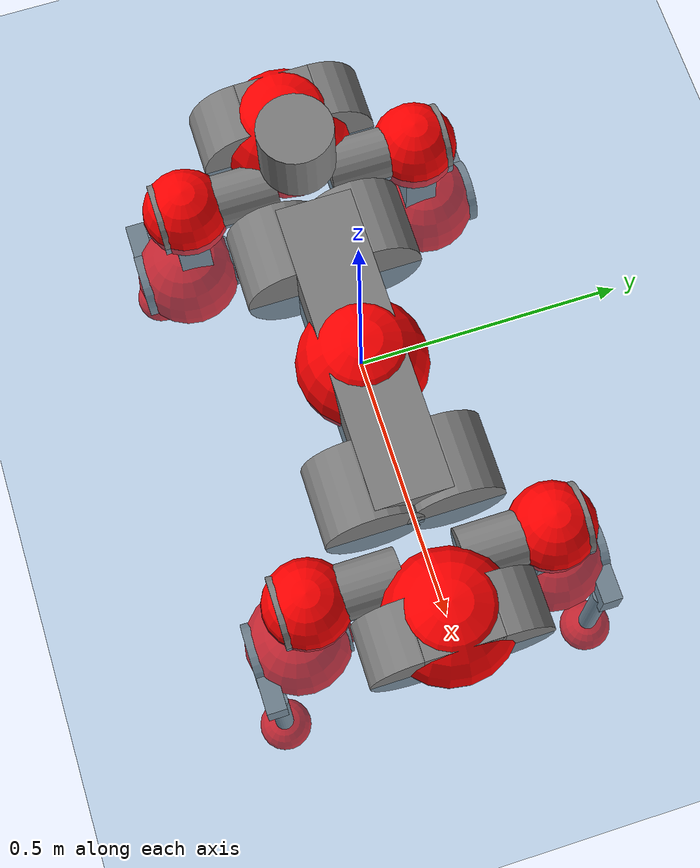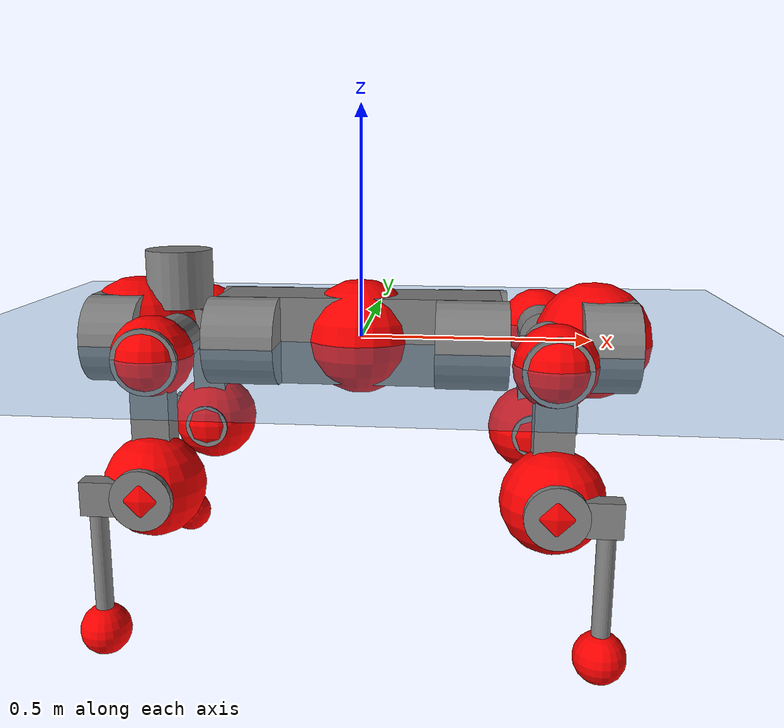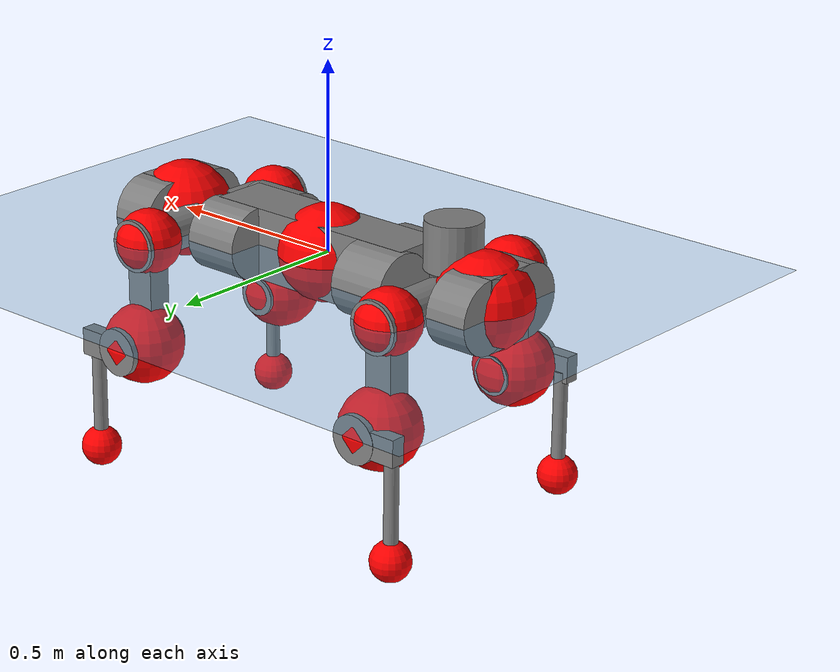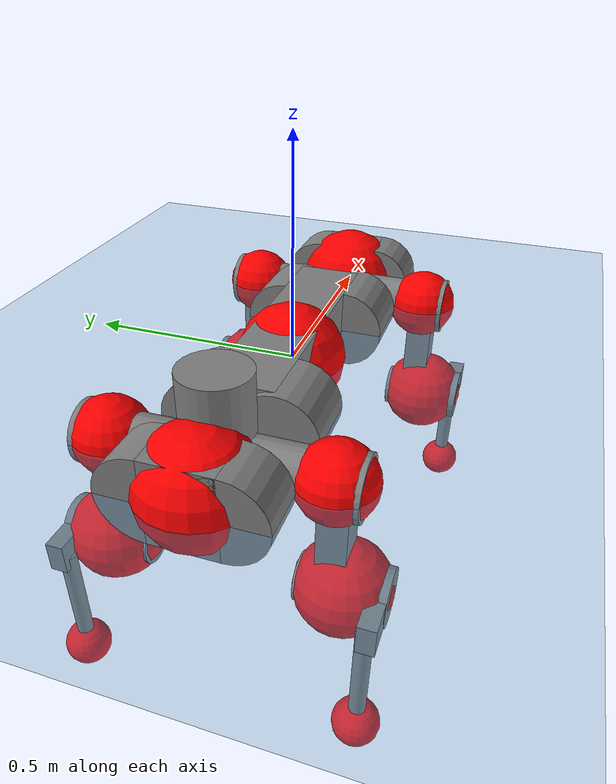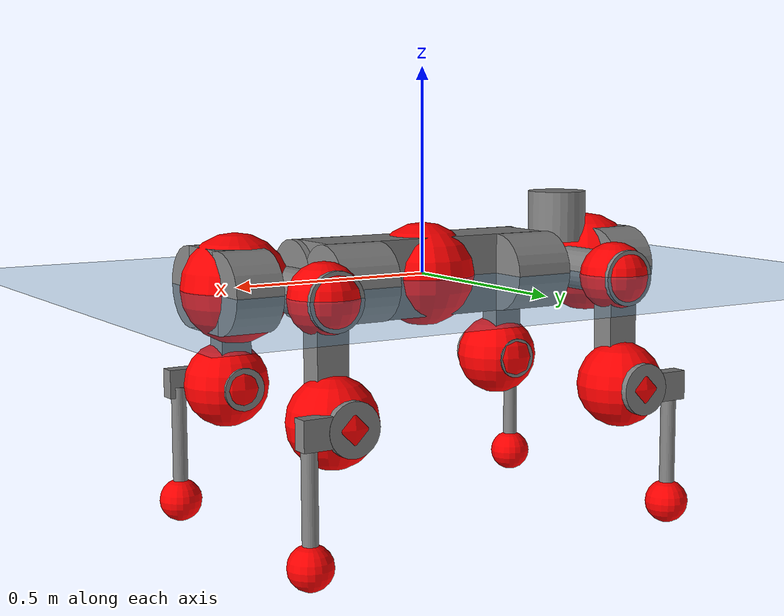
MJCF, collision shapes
<mujoco model="anymal_c">
  <compiler angle="radian" assetdir="assets" balanceinertia="true" inertiafromgeom="false"/>

  <option timestep="0.005" density="1.2" viscosity="2e-05"/>

  <size nkey="1"/>

  <visual>
    <quality shadowsize="8192"/>
    <map shadowclip="0.5"/>
  </visual>

  <default>
    <default class="/">
      <material specular="0" shininess="0.25"/>
      <geom contype="0" conaffinity="0" group="1" solref="-1000 -80"/>
      <site size="0.01 0.005 0.005" group="5"/>
      <general forcelimited="true" forcerange="-80 80" biastype="affine" gainprm="80" biasprm="0 -80 -2"/>
      <default class="anymal_c">
        <joint armature="0.01" damping="0.01" frictionloss="0.1"/>
        <default class="visual">
          <geom type="mesh" group="2"/>
          <default class="visual_zflip"/>
        </default>
        <default class="collision">
          <geom type="cylinder" group="3"/>
          <default class="foot">
            <geom size="0.03 0 0" type="sphere" condim="6" priority="1" friction="0.8 0.02 0.01" solimp="0.015 1 0.03"/>
          </default>
        </default>
      </default>
      <default class="reward_collision_sphere">
        <geom group="5" rgba="1 0 0 1"/>
      </default>
    </default>
  </default>

  <asset>
    <texture type="skybox" colorspace="auto" name="//unnamed_texture_0" builtin="gradient" rgb1="0.95 0.95 0.95" rgb2="0.95 0.95 0.95" width="100" height="600"/>
    <texture type="2d" colorspace="auto" name="texplane" builtin="checker" rgb1="0.345 0.575 0.748" rgb2="0.345 0.575 0.748" markrgb="1 1 1" width="512" height="512"/>
    <texture type="2d" colorspace="linear" name="base" file="base.png"/>
    <texture type="2d" colorspace="linear" name="top_shell" file="top_shell.png"/>
    <texture type="2d" colorspace="linear" name="bottom_shell" file="bottom_shell.png"/>
    <texture type="2d" colorspace="linear" name="remote" file="remote.png"/>
    <texture type="2d" colorspace="linear" name="hatch" file="hatch.png"/>
    <texture type="2d" colorspace="linear" name="handle" file="handle.png"/>
    <texture type="2d" colorspace="linear" name="face" file="face.png"/>
    <texture type="2d" colorspace="linear" name="battery" file="battery.png"/>
    <texture type="2d" colorspace="linear" name="lidar_cage" file="lidar_cage.png"/>
    <texture type="2d" colorspace="linear" name="depth_camera" file="depth_camera.png"/>
    <texture type="2d" colorspace="linear" name="wide_angle_camera" file="wide_angle_camera.png"/>
    <texture type="2d" colorspace="linear" name="lidar" file="lidar.png"/>
    <texture type="2d" colorspace="linear" name="drive" file="drive.png"/>
    <texture type="2d" colorspace="linear" name="hip_l" file="hip_l.png"/>
    <texture type="2d" colorspace="linear" name="shank_l" file="shank_l.png"/>
    <texture type="2d" colorspace="linear" name="foot" file="foot.png"/>
    <texture type="2d" colorspace="linear" name="thigh" file="thigh.png"/>
    <texture type="2d" colorspace="linear" name="shank_r" file="shank_r.png"/>
    <texture type="2d" colorspace="linear" name="hip_r" file="hip_r.png"/>
    <material name="MatPlane" class="/" texture="texplane" texuniform="true" texrepeat="2 2" specular="0.9" shininess="0.5"/>
    <material name="black_plastic" class="/" rgba="0.007 0.007 0.007 1"/>
    <material name="green" class="/" rgba="0.052 0.178 0.033 1"/>
    <material name="red" class="/" rgba="0.178 0.006 0.005 1"/>
    <material name="yellow" class="/" rgba="0.178 0.119 0.006 1"/>
    <material name="lwl" class="/" rgba="0.8 0.8 0.8 1"/>
    <material name="base" class="/" texture="base"/>
    <material name="top_shell" class="/" texture="top_shell"/>
    <material name="bottom_shell" class="/" texture="bottom_shell"/>
    <material name="hip_l" class="/" texture="hip_l"/>
    <material name="thigh" class="/" texture="thigh"/>
    <material name="shank_l" class="/" texture="shank_l"/>
    <material name="foot" class="/" texture="foot"/>
    <material name="hip_r" class="/" texture="hip_r"/>
    <material name="shank" class="/" texture="shank_r"/>
    <material name="hatch" class="/" texture="hatch"/>
    <material name="remote" class="/" texture="remote"/>
    <material name="handle" class="/" texture="handle"/>
    <material name="face" class="/" texture="face"/>
    <material name="depth_camera" class="/" texture="depth_camera"/>
    <material name="wide_angle_camera" class="/" texture="wide_angle_camera"/>
    <material name="battery" class="/" texture="battery"/>
    <material name="lidar_cage" class="/" texture="lidar_cage"/>
    <material name="lidar" class="/" texture="lidar"/>
    <material name="drive" class="/" texture="drive"/>
    <mesh name="base_0" class="/" file="base_0.obj"/>
    <mesh name="base_1" class="/" file="base_1.obj"/>
    <mesh name="base_2" class="/" file="base_2.obj"/>
    <mesh name="base_3" class="/" file="base_3.obj"/>
    <mesh name="base_4" class="/" file="base_4.obj"/>
    <mesh name="base_5" class="/" file="base_5.obj"/>
    <mesh name="top_shell" class="/" file="top_shell.obj"/>
    <mesh name="bottom_shell" class="/" file="bottom_shell.obj"/>
    <mesh name="remote" class="/" file="remote.obj"/>
    <mesh name="handle" class="/" file="handle.obj"/>
    <mesh name="face" class="/" file="face.obj"/>
    <mesh name="wide_angle_camera" class="/" file="wide_angle_camera.obj"/>
    <mesh name="depth_camera" class="/" file="depth_camera.obj"/>
    <mesh name="battery" class="/" file="battery.obj"/>
    <mesh name="lidar_cage" class="/" file="lidar_cage.obj"/>
    <mesh name="lidar" class="/" file="lidar.obj"/>
    <mesh name="drive" class="/" file="drive.obj"/>
    <mesh name="hip_l" class="/" file="hip_l.obj"/>
    <mesh name="thigh" class="/" file="thigh.obj"/>
    <mesh name="shank_l" class="/" file="shank_l.obj"/>
    <mesh name="foot" class="/" file="foot.obj"/>
    <mesh name="hip_r" class="/" file="hip_r.obj"/>
    <mesh name="hatch" class="/" file="hatch.obj"/>
    <mesh name="shank_r" class="/" file="shank_r.obj"/>
  </asset>

  <worldbody>
    <geom name="floor" class="/" size="100 100 0.125" type="plane" group="0" material="MatPlane"/>
    <light name="toplight_shadow" class="/" pos="0 0 5" dir="0.0990148 0.0990148 -0.990148" type="directional" ambient="0.04 0.04 0.04" diffuse="0.55 0.55 0.55" specular="0.12 0.12 0.12"/>
    <light name="toplight_fill" class="/" pos="0 0 5" dir="0.0990148 0.0990148 -0.990148" type="directional" castshadow="false" ambient="0.04 0.04 0.04" diffuse="0.3 0.3 0.3" specular="0.08 0.08 0.08"/>
    <body name="trunk" childclass="anymal_c" pos="-0.000146557 0.00271888 0.000395298" quat="0.999999 0.000632194 -2.94458e-05 0.00078697">
      <inertial pos="0.00251566 -0.000865631 0.0465582" quat="0.497096 0.496624 0.510859 0.49526" mass="22.8493" diaginertia="1.13725 1.04386 0.15244"/>
      <joint name="//unnamed_joint_0" type="free" armature="0" damping="0" frictionloss="0"/>
      <geom name="//unnamed_geom_1" class="visual" material="green" mesh="base_0"/>
      <geom name="//unnamed_geom_2" class="visual" material="yellow" mesh="base_1"/>
      <geom name="//unnamed_geom_3" class="visual" material="red" mesh="base_2"/>
      <geom name="//unnamed_geom_4" class="visual" material="black_plastic" mesh="base_3"/>
      <geom name="//unnamed_geom_5" class="visual" material="lwl" mesh="base_4"/>
      <geom name="//unnamed_geom_6" class="visual" material="base" mesh="base_5"/>
      <geom name="trunk_1" class="collision" size="0.305035 0.073629 0.0946659" type="box"/>
      <geom name="trunk_2" class="collision" size="0.0946659 0.0762586" pos="0.243783 0.0771224 0" quat="0.707107 0 0.707107 0"/>
      <geom name="trunk_3" class="collision" size="0.0946659 0.0762586" pos="-0.243783 0.0771224 0" quat="0.707107 0 0.707107 0"/>
      <geom name="trunk_4" class="collision" size="0.0946659 0.0762586" pos="0.243783 -0.0771224 0" quat="0.707107 0 0.707107 0"/>
      <geom name="trunk_5" class="collision" size="0.0946659 0.0762586" pos="-0.243783 -0.0771224 0" quat="0.707107 0 0.707107 0"/>
      <geom name="//unnamed_geom_12" class="visual" material="top_shell" mesh="top_shell"/>
      <geom name="//unnamed_geom_13" class="visual" material="bottom_shell" mesh="bottom_shell"/>
      <geom name="//unnamed_geom_14" class="visual" material="remote" mesh="remote"/>
      <geom name="//unnamed_geom_15" class="visual" material="handle" mesh="handle"/>
      <geom name="//unnamed_geom_16" class="visual" pos="0.464588 0 0" quat="1 0 0 0" material="face" mesh="face"/>
      <geom name="trunk_6" class="collision" size="0.0578514 0.073629 0.0946659" pos="0.526235 0 0" type="box"/>
      <geom name="//unnamed_geom_18" class="collision" size="0.0946659 0.0578514" pos="0.526235 0.0771224 0" quat="0.707107 0 0.707107 0"/>
      <geom name="//unnamed_geom_19" class="collision" size="0.0946659 0.0578514" pos="0.526235 -0.0771224 0" quat="0.707107 0 0.707107 0"/>
      <geom name="//unnamed_geom_20" class="visual" pos="0.517428 0 -0.0258138" quat="0.965926 0 0.258819 0" material="depth_camera" mesh="depth_camera"/>
      <geom name="//unnamed_geom_21" class="visual" pos="0.574991 0 0.0139661" material="wide_angle_camera" mesh="wide_angle_camera"/>
      <geom name="//unnamed_geom_22" class="visual_zflip" pos="-0.464588 0 0" quat="0 0 0 1" material="face" mesh="face"/>
      <geom name="trunk_7" class="collision" size="0.0578514 0.073629 0.0946659" pos="-0.526235 0 0" quat="0 0 0 1" type="box"/>
      <geom name="//unnamed_geom_24" class="collision" size="0.0946659 0.0578514" pos="-0.526235 -0.0771224 0" quat="0 -0.707107 0 0.707107"/>
      <geom name="//unnamed_geom_25" class="collision" size="0.0946659 0.0578514" pos="-0.526235 0.0771224 0" quat="0 -0.707107 0 0.707107"/>
      <geom name="//unnamed_geom_26" class="visual" pos="-0.517428 0 -0.0258138" quat="0 -0.258819 0 0.965926" material="depth_camera" mesh="depth_camera"/>
      <geom name="//unnamed_geom_27" class="visual_zflip" pos="-0.574991 0 0.0139661" quat="0 0 0 1" material="wide_angle_camera" mesh="wide_angle_camera"/>
      <geom name="//unnamed_geom_28" class="visual" material="battery" mesh="battery"/>
      <geom name="//unnamed_geom_29" class="visual" pos="0 0.0839814 0.02853" quat="0.683013 -0.183013 0.183013 0.683013" material="depth_camera" mesh="depth_camera"/>
      <geom name="//unnamed_geom_30" class="visual" pos="0 -0.0839814 0.02853" quat="0.683013 0.183013 0.183013 -0.683013" material="depth_camera" mesh="depth_camera"/>
      <geom name="//unnamed_geom_31" class="visual" pos="-0.407986 0 0.0685711" quat="1 0 0 0" material="lidar_cage" mesh="lidar_cage"/>
      <geom name="trunk_8" class="collision" size="0.073629 0.0631106" pos="-0.407986 0 0.124548"/>
      <geom name="//unnamed_geom_33" class="visual" pos="-0.407986 -7.5004e-06 0.132664" quat="0.707107 0 0 -0.707107" material="lidar" mesh="lidar"/>
      <geom name="//unnamed_geom_34" class="visual" pos="0.33614 0.114522 2.91197e-09" quat="0.258819 0.965926 0 0" material="drive" mesh="drive"/>
      <geom name="//unnamed_geom_35" class="visual" pos="0.33614 -0.114522 -2.91197e-09" quat="0.258819 -0.965926 0 0" material="drive" mesh="drive"/>
      <geom name="//unnamed_geom_36" class="visual" pos="-0.33614 0.114522 -2.91197e-09" quat="0 0 0.965926 -0.258819" material="drive" mesh="drive"/>
      <geom name="//unnamed_geom_37" class="visual" pos="-0.33614 -0.114522 2.91197e-09" quat="0 0 -0.965926 -0.258819" material="drive" mesh="drive"/>
      <geom name="//unnamed_geom_38" class="visual" pos="0.130017 0 0.0681046" quat="1 0 0 0" material="hatch" mesh="hatch"/>
      <geom name="//unnamed_geom_39" class="reward_collision_sphere" size="0.126221"/>
      <geom name="//unnamed_geom_40" class="reward_collision_sphere" size="0.126221" pos="0.504378 0 0"/>
      <geom name="//unnamed_geom_41" class="reward_collision_sphere" size="0.126221" pos="-0.504378 0 0"/>
      <site name="imu" pos="0.290229 0.00560687 0.0496797" size="0.0105184"/>
      <camera name="track" pos="0 -2.2035 0" quat="0.707107 0.707107 0 0" mode="trackcom"/>
      <camera name="ego_camera" pos="0.504378 0 -0.0373176" quat="-0.5 -0.5 0.5 0.5"/>
      <body name="LF_HIP" pos="0.337312 0.11344 -0.00309731" quat="0.25875 0.965944 0.000118511 5.00859e-05">
        <inertial pos="0.0643673 -0.0193041 -0.00706052" quat="-0.127633 0.710321 -0.134998 0.678918" mass="3.19903" diaginertia="0.010257 0.00791839 0.00233795"/>
        <joint name="LF_HAA" pos="0 0 0" axis="0.99993 -0.0114544 0.00306497" stiffness="0.000604827" range="-0.714397 0.494533" armature="0.0112327" damping="0.019431" frictionloss="0.119132"/>
        <geom name="//unnamed_geom_42" class="visual" pos="0 0.000171298 -2.81356e-05" quat="0.258819 -0.965926 0 0" material="hip_l" mesh="hip_l"/>
        <geom name="//unnamed_geom_43" class="visual" pos="0.0671383 -0.081041 -0.0455405" quat="0.183013 -0.683013 0.683013 0.183013" material="drive" mesh="drive"/>
        <geom name="//unnamed_geom_44" class="collision" size="0.0525922 0.073629" pos="0.0671383 -0.0131767 -0.00644195" quat="-0.353553 -0.612372 0.612372 -0.353553"/>
        <body name="LF_THIGH" pos="0.0651473 -0.0795193 -0.0407014" quat="0.183818 -0.683237 0.682809 0.182127">
          <inertial pos="0.0354159 -0.000123752 -0.227459" quat="0.993954 -0.0103768 -0.0683341 0.0853131" mass="3.4225" diaginertia="0.0511313 0.0468642 0.00289393"/>
          <joint name="LF_HFE" pos="0 0 0" axis="0.99988 -0.00263247 -0.0152419" range="-3.09099 3.13865" armature="0.010875" damping="0" frictionloss="0.0927103"/>
          <geom name="//unnamed_geom_45" class="visual" pos="0.000379839 5.98537e-07 0" quat="0.707107 0 0 -0.707107" material="thigh" mesh="thigh"/>
          <geom name="//unnamed_geom_46" class="collision" size="0.0683698 0.0420737" pos="0.0448336 0 0" quat="0.5 0.5 -0.5 -0.5"/>
          <geom name="//unnamed_geom_47" class="collision" size="0.0394441 0.0315553 0.14864" pos="0.0336252 0 -0.131838" quat="0.707107 0 0 -0.707107" type="box"/>
          <geom name="//unnamed_geom_48" class="visual" pos="0.11242 0 -0.265888" quat="1 0 0 0" material="drive" mesh="drive"/>
          <geom name="//unnamed_geom_49" class="collision" size="0.0525922 0.073629" pos="0.0339615 0 -0.265888" quat="0.707107 0 0.707107 0"/>
          <geom name="//unnamed_geom_50" class="reward_collision_sphere" size="0.0841475" pos="0.028021 0 0"/>
          <body name="LF_SHANK" pos="0.111625 0.00182919 -0.268351" quat="1 0.000421898 -0.000464606 -0.000390175">
            <inertial pos="0.00882528 -0.0693021 -0.075635" quat="0.993224 -0.114049 -0.0025354 -0.0221783" mass="0.723675" diaginertia="0.0181974 0.0153976 0.000808529"/>
            <joint name="LF_KFE" pos="0 0 0" axis="0.999885 -0.00929928 0.0119475" range="-3.15076 3.1171" armature="0.0103124" damping="0.00278724" frictionloss="0.105221"/>
            <geom name="//unnamed_geom_51" class="visual" pos="0.000123857 0.000660412 0" quat="0.707107 0 0 -0.707107" material="shank_l" mesh="shank_l"/>
            <geom name="LF_kfe_act" class="collision" size="0.0631106 0.0210369" pos="0.0224168 0 0" quat="0.5 0.5 -0.5 -0.5"/>
            <geom name="//unnamed_geom_53" class="collision" size="0.0604799 0.0354997 0.019985" pos="0.0224168 -0.0633495 0" quat="0.5 0.5 -0.5 -0.5" type="box"/>
            <geom name="//unnamed_geom_54" class="visual" pos="0.0146269 -0.096686 -0.315306" quat="0.382683 0 0 -0.92388" material="foot" mesh="foot"/>
            <geom name="LF_calf" class="collision" size="0.0184073 0.148575" pos="0.014627 -0.0968988 -0.157653" quat="0.707107 0 0 -0.707107"/>
            <geom name="LF_foot" class="foot" size="0.0338678" pos="0.014627 -0.0968988 -0.294315" quat="0.707107 0 0 -0.707107"/>
            <geom name="//unnamed_geom_57" class="reward_collision_sphere" size="0.105184" pos="-0.056042 0 0"/>
            <geom name="//unnamed_geom_58" class="reward_collision_sphere" size="0.0525922" pos="0.014627 -0.0968988 -0.294315"/>
            <site name="LF_foot" class="foot" pos="0.014627 -0.0968988 -0.294315" quat="0.707107 0 0 -0.707107" size="0.0105184"/>
          </body>
        </body>
      </body>
      <body name="RF_HIP" pos="0.337968 -0.116737 -0.0004941" quat="0.258903 -0.965903 -0.00027097 0.000123213">
        <inertial pos="0.0621044 0.0198296 -0.00717874" quat="0.138506 0.683706 0.134907 0.703678" mass="3.22447" diaginertia="0.010302 0.00768717 0.00229971"/>
        <joint name="RF_HAA" pos="0 0 0" axis="1 2.83249e-05 -0.000793713" range="-0.476958 0.733671" armature="0.0104769" damping="0.0117824" frictionloss="0.102427"/>
        <geom name="//unnamed_geom_59" class="visual" pos="0 -0.000171297 -2.81355e-05" quat="0.258819 0.965926 0 0" material="hip_r" mesh="hip_r"/>
        <geom name="//unnamed_geom_60" class="visual" pos="0.0671383 0.081041 -0.0455405" quat="0.183013 0.683013 0.683013 -0.183013" material="drive" mesh="drive"/>
        <geom name="//unnamed_geom_61" class="collision" size="0.0525922 0.073629" pos="0.0671383 0.0131767 -0.00644195" quat="-0.353553 0.612372 0.612372 0.353553"/>
        <body name="RF_THIGH" pos="0.0669684 0.0781125 -0.0374236" quat="0.183297 0.682846 0.683128 -0.18292">
          <inertial pos="0.0320025 -0.00247115 -0.226795" quat="0.992836 -0.00407742 -0.0788441 0.0896887" mass="3.68138" diaginertia="0.0538408 0.0507563 0.00306245"/>
          <joint name="RF_HFE" pos="0 0 0" axis="0.999915 0.00658233 -0.0112127" stiffness="0.0156939" range="-3.15389 3.19234" armature="0.00918541" damping="0.00554471" frictionloss="0.112942"/>
          <geom name="//unnamed_geom_62" class="visual" pos="0.000379839 5.98537e-07 0" quat="0.707107 0 0 -0.707107" material="thigh" mesh="thigh"/>
          <geom name="//unnamed_geom_63" class="collision" size="0.0683698 0.0420737" pos="0.0448336 0 0" quat="0.5 0.5 0.5 0.5"/>
          <geom name="//unnamed_geom_64" class="collision" size="0.0394441 0.0315553 0.14864" pos="0.0336252 0 -0.131838" quat="0.707107 0 0 0.707107" type="box"/>
          <geom name="//unnamed_geom_65" class="visual" pos="0.11242 0 -0.265888" quat="1 0 0 0" material="drive" mesh="drive"/>
          <geom name="//unnamed_geom_66" class="collision" size="0.0525922 0.073629" pos="0.0339615 0 -0.265888" quat="0.707107 0 0.707107 0"/>
          <geom name="//unnamed_geom_67" class="reward_collision_sphere" size="0.0841475" pos="0.028021 0 0"/>
          <body name="RF_SHANK" pos="0.113081 0.00279238 -0.265305" quat="1 -0.000458619 -0.000180463 0.000659559">
            <inertial pos="0.00356696 0.0655117 -0.074652" quat="0.992648 0.117921 -0.007355 0.0262877" mass="0.672458" diaginertia="0.0183432 0.0148693 0.000765932"/>
            <joint name="RF_KFE" pos="0 0 0" axis="0.999907 -0.0132088 -0.00352455" range="-3.12183 3.14529" armature="0.0109811" damping="0.005478" frictionloss="0.105299"/>
            <geom name="//unnamed_geom_68" class="visual" pos="0.000123856 -0.000660411 0" quat="0.707107 0 0 0.707107" material="shank" mesh="shank_r"/>
            <geom name="RF_kfe_act" class="collision" size="0.0631106 0.0210369" pos="0.0224168 0 0" quat="0.5 0.5 0.5 0.5"/>
            <geom name="//unnamed_geom_70" class="collision" size="0.0604799 0.0354997 0.019985" pos="0.0224168 0.0633495 0" quat="0.5 0.5 0.5 0.5" type="box"/>
            <geom name="//unnamed_geom_71" class="visual" pos="0.014627 0.096686 -0.315306" quat="0.382683 0 0 0.92388" material="foot" mesh="foot"/>
            <geom name="RF_calf" class="collision" size="0.0184073 0.148575" pos="0.014627 0.0968988 -0.157653" quat="0.707107 0 0 0.707107"/>
            <geom name="RF_foot" class="foot" size="0.0291639" pos="0.014627 0.0968988 -0.294315" quat="0.707107 0 0 0.707107"/>
            <geom name="//unnamed_geom_74" class="reward_collision_sphere" size="0.105184" pos="-0.056042 0 0"/>
            <geom name="//unnamed_geom_75" class="reward_collision_sphere" size="0.0525922" pos="0.014627 0.0968988 -0.294315"/>
            <site name="RF_foot" class="foot" pos="0.014627 0.0968988 -0.294315" quat="0.707107 0 0 0.707107" size="0.0105184"/>
          </body>
        </body>
      </body>
      <body name="LH_HIP" pos="-0.338713 0.114648 -0.00128202" quat="0.000675709 0.000520956 0.965961 -0.258686">
        <inertial pos="0.0626099 0.0191084 -0.0077437" quat="0.135224 0.67921 0.127212 0.710074" mass="3.13356" diaginertia="0.0100944 0.00804852 0.00232054"/>
        <joint name="LH_HAA" pos="0 0 0" axis="0.999889 0.0115182 -0.00942843" range="-0.45764 0.777806" armature="0.0105907" damping="0.00827502" frictionloss="0.0914486"/>
        <geom name="//unnamed_geom_76" class="visual" pos="0 -0.000171297 -2.81355e-05" quat="-0.258819 -0.965926 0 0" material="hip_r" mesh="hip_r"/>
        <geom name="//unnamed_geom_77" class="visual" pos="0.0671383 0.081041 -0.0455405" quat="0.183013 0.683013 0.683013 -0.183013" material="drive" mesh="drive"/>
        <geom name="//unnamed_geom_78" class="collision" size="0.0525922 0.073629" pos="0.0671383 0.0131767 -0.00644195" quat="-0.353553 0.612372 0.612372 0.353553"/>
        <body name="LH_THIGH" pos="0.0689248 0.0830278 -0.0393951" quat="0.181859 0.683393 0.682675 -0.184001">
          <inertial pos="0.0363226 -0.00128819 -0.229613" quat="0.992832 -0.00792256 -0.076622 0.0913825" mass="3.71878" diaginertia="0.0532733 0.0490882 0.00308899"/>
          <joint name="LH_HFE" pos="0 0 0" axis="0.999998 -0.00168063 0.000519253" range="-3.10652 3.18114" armature="0.0100623" damping="0.0214908" frictionloss="0.107629"/>
          <geom name="//unnamed_geom_79" class="visual" pos="0.000379839 5.98537e-07 0" quat="0.707107 0 0 -0.707107" material="thigh" mesh="thigh"/>
          <geom name="//unnamed_geom_80" class="collision" size="0.0683698 0.0420737" pos="0.0448336 0 0" quat="0.5 0.5 -0.5 -0.5"/>
          <geom name="//unnamed_geom_81" class="collision" size="0.0394441 0.0315553 0.14864" pos="0.0336252 0 -0.131838" quat="0.707107 0 0 -0.707107" type="box"/>
          <geom name="//unnamed_geom_82" class="visual" pos="0.11242 0 -0.265888" quat="1 0 0 0" material="drive" mesh="drive"/>
          <geom name="//unnamed_geom_83" class="collision" size="0.0525922 0.073629" pos="0.0339615 0 -0.265888" quat="0.707107 0 0.707107 0"/>
          <geom name="//unnamed_geom_84" class="reward_collision_sphere" size="0.0841475" pos="0.028021 0 0"/>
          <body name="LH_SHANK" pos="0.110481 0.000337575 -0.26411" quat="1 -0.000819036 0.00032241 0.000364115">
            <inertial pos="0.00626095 0.067224 -0.0778792" quat="0.991614 0.12682 -0.00677948 0.0239125" mass="0.685477" diaginertia="0.0181096 0.0144221 0.000778068"/>
            <joint name="LH_KFE" pos="0 0 0" axis="0.999927 0.0120409 0.000655136" range="-3.11021 3.09851" armature="0.0115894" damping="0.00528718" frictionloss="0.0997109"/>
            <geom name="//unnamed_geom_85" class="visual" pos="0.000123856 -0.000660411 0" quat="-0.707107 0 0 -0.707107" material="shank" mesh="shank_r"/>
            <geom name="LH_kfe_act" class="collision" size="0.0631106 0.0210369" pos="0.0224168 0 0" quat="0.5 0.5 -0.5 -0.5"/>
            <geom name="//unnamed_geom_87" class="collision" size="0.0604799 0.0354997 0.019985" pos="0.0224168 0.0633495 0" quat="0.5 0.5 -0.5 -0.5" type="box"/>
            <geom name="//unnamed_geom_88" class="visual" pos="0.014627 0.096686 -0.315306" quat="-0.382683 0 0 -0.92388" material="foot" mesh="foot"/>
            <geom name="LH_calf" class="collision" size="0.0184073 0.148575" pos="0.014627 0.0968988 -0.157653" quat="0.707107 0 0 -0.707107"/>
            <geom name="LH_foot" class="foot" size="0.0308954" pos="0.014627 0.0968988 -0.294315" quat="0.707107 0 0 -0.707107"/>
            <geom name="//unnamed_geom_91" class="reward_collision_sphere" size="0.105184" pos="-0.056042 0 0"/>
            <geom name="//unnamed_geom_92" class="reward_collision_sphere" size="0.0525922" pos="0.014627 0.0968988 -0.294315"/>
            <site name="LH_foot" class="foot" pos="0.014627 0.0968988 -0.294315" quat="0.707107 0 0 -0.707107" size="0.0105184"/>
          </body>
        </body>
      </body>
      <body name="RH_HIP" pos="-0.334938 -0.111266 0.000618745" quat="-0.0002604 -0.000134501 -0.965646 -0.259862">
        <inertial pos="0.064971 -0.014381 -0.00754526" quat="-0.128574 0.708007 -0.140732 0.679992" mass="3.17436" diaginertia="0.0104855 0.00804118 0.00234706"/>
        <joint name="RH_HAA" pos="0 0 0" axis="0.999973 0.00647733 -0.00358535" range="-0.713508 0.545743" armature="0.009155" damping="0.0238181" frictionloss="0.100312"/>
        <geom name="//unnamed_geom_93" class="visual" pos="0 0.000171298 -2.81356e-05" quat="-0.258819 0.965926 0 0" material="hip_l" mesh="hip_l"/>
        <geom name="//unnamed_geom_94" class="visual" pos="0.0671383 -0.081041 -0.0455405" quat="-0.183013 0.683013 -0.683013 -0.183013" material="drive" mesh="drive"/>
        <geom name="//unnamed_geom_95" class="collision" size="0.0525922 0.073629" pos="0.0671383 -0.0131767 -0.00644195" quat="0.353553 0.612372 -0.612372 0.353553"/>
        <body name="RH_THIGH" pos="0.0679261 -0.0811981 -0.0395776" quat="-0.181808 0.68343 -0.683164 -0.182086">
          <inertial pos="0.0370957 0.000267214 -0.226508" quat="0.994121 -0.0101218 -0.0765072 0.0759454" mass="3.45042" diaginertia="0.0535976 0.0484587 0.00284997"/>
          <joint name="RH_HFE" pos="0 0 0" axis="0.999942 0.00696937 -0.00821588" range="-3.15669 3.19911" armature="0.0107488" damping="0.0107053" frictionloss="0.091381"/>
          <geom name="//unnamed_geom_96" class="visual" pos="0.000379839 5.98537e-07 0" quat="0.707107 0 0 -0.707107" material="thigh" mesh="thigh"/>
          <geom name="//unnamed_geom_97" class="collision" size="0.0683698 0.0420737" pos="0.0448336 0 0" quat="0.5 0.5 0.5 0.5"/>
          <geom name="//unnamed_geom_98" class="collision" size="0.0394441 0.0315553 0.14864" pos="0.0336252 0 -0.131838" quat="0.707107 0 0 0.707107" type="box"/>
          <geom name="//unnamed_geom_99" class="visual" pos="0.11242 0 -0.265888" quat="1 0 0 0" material="drive" mesh="drive"/>
          <geom name="//unnamed_geom_100" class="collision" size="0.0525922 0.073629" pos="0.0339615 0 -0.265888" quat="0.707107 0 0.707107 0"/>
          <geom name="//unnamed_geom_101" class="reward_collision_sphere" size="0.0841475" pos="0.028021 0 0"/>
          <body name="RH_SHANK" pos="0.109631 0.00163828 -0.265055" quat="1 7.89148e-05 -4.82316e-05 0.000193374">
            <inertial pos="0.00618411 -0.0658361 -0.0762124" quat="0.992799 -0.11716 0.00153732 -0.0249415" mass="0.688181" diaginertia="0.0175461 0.0150316 0.000794572"/>
            <joint name="RH_KFE" pos="0 0 0" axis="1 -0.000366383 -3.35506e-05" range="-3.17341 3.11908" armature="0.0106918" damping="0.0171925" frictionloss="0.0990608"/>
            <geom name="//unnamed_geom_102" class="visual" pos="0.000123857 0.000660412 0" quat="0.707107 0 0 -0.707107" material="shank_l" mesh="shank_l"/>
            <geom name="RH_kfe_act" class="collision" size="0.0631106 0.0210369" pos="0.0224168 0 0" quat="0.5 0.5 0.5 0.5"/>
            <geom name="//unnamed_geom_104" class="collision" size="0.0604799 0.0354997 0.019985" pos="0.0224168 -0.0633495 0" quat="0.5 0.5 0.5 0.5" type="box"/>
            <geom name="//unnamed_geom_105" class="visual" pos="0.0146269 -0.096686 -0.315306" quat="0.382683 0 0 -0.92388" material="foot" mesh="foot"/>
            <geom name="RH_calf" class="collision" size="0.0184073 0.148575" pos="0.014627 -0.0968988 -0.157653" quat="0.707107 0 0 0.707107"/>
            <geom name="RH_foot" class="foot" size="0.0301345" pos="0.014627 -0.0968988 -0.294315" quat="0.707107 0 0 0.707107"/>
            <geom name="//unnamed_geom_108" class="reward_collision_sphere" size="0.105184" pos="-0.056042 0 0"/>
            <geom name="//unnamed_geom_109" class="reward_collision_sphere" size="0.0525922" pos="0.014627 -0.0968988 -0.294315"/>
            <site name="RH_foot" class="foot" pos="0.014627 -0.0968988 -0.294315" quat="0.707107 0 0 0.707107" size="0.0105184"/>
          </body>
        </body>
      </body>
    </body>
  </worldbody>

  <contact>
    <pair class="/" geom1="floor" geom2="LF_foot" name="//unnamed_contact_0"/>
    <pair class="/" geom1="floor" geom2="RF_foot" name="//unnamed_contact_1"/>
    <pair class="/" geom1="floor" geom2="LH_foot" name="//unnamed_contact_2"/>
    <pair class="/" geom1="floor" geom2="RH_foot" name="//unnamed_contact_3"/>
  </contact>

  <actuator>
    <general name="LF_HAA" class="/" joint="LF_HAA" forcerange="-86.0507 86.0507" gainprm="84.3442" biasprm="0 -84.3442 -2.28833"/>
    <general name="LF_HFE" class="/" joint="LF_HFE" forcerange="-82.5607 82.5607" gainprm="84.3442" biasprm="0 -84.3442 -2.28833"/>
    <general name="LF_KFE" class="/" joint="LF_KFE" forcerange="-93.1343 93.1343" gainprm="84.3442" biasprm="0 -84.3442 -2.28833"/>
    <general name="RF_HAA" class="/" joint="RF_HAA" forcerange="-84.4514 84.4514" gainprm="84.3442" biasprm="0 -84.3442 -2.28833"/>
    <general name="RF_HFE" class="/" joint="RF_HFE" forcerange="-90.1411 90.1411" gainprm="84.3442" biasprm="0 -84.3442 -2.28833"/>
    <general name="RF_KFE" class="/" joint="RF_KFE" forcerange="-91.5654 91.5654" gainprm="84.3442" biasprm="0 -84.3442 -2.28833"/>
    <general name="LH_HAA" class="/" joint="LH_HAA" forcerange="-86.0825 86.0825" gainprm="84.3442" biasprm="0 -84.3442 -2.28833"/>
    <general name="LH_HFE" class="/" joint="LH_HFE" forcerange="-91.2616 91.2616" gainprm="84.3442" biasprm="0 -84.3442 -2.28833"/>
    <general name="LH_KFE" class="/" joint="LH_KFE" forcerange="-77.2033 77.2033" gainprm="84.3442" biasprm="0 -84.3442 -2.28833"/>
    <general name="RH_HAA" class="/" joint="RH_HAA" forcerange="-87.0113 87.0113" gainprm="84.3442" biasprm="0 -84.3442 -2.28833"/>
    <general name="RH_HFE" class="/" joint="RH_HFE" forcerange="-93.4434 93.4434" gainprm="84.3442" biasprm="0 -84.3442 -2.28833"/>
    <general name="RH_KFE" class="/" joint="RH_KFE" forcerange="-90.4695 90.4695" gainprm="84.3442" biasprm="0 -84.3442 -2.28833"/>
  </actuator>

  <sensor>
    <gyro site="imu" name="imu_angular_velocity"/>
    <velocimeter site="imu" name="imu_linear_velocity"/>
    <framelinvel objtype="site" objname="LF_foot" name="LF_foot_global_linear_velocity"/>
    <framelinvel objtype="site" objname="RF_foot" name="RF_foot_global_linear_velocity"/>
    <framelinvel objtype="site" objname="LH_foot" name="LH_foot_global_linear_velocity"/>
    <framelinvel objtype="site" objname="RH_foot" name="RH_foot_global_linear_velocity"/>
  </sensor>

  <keyframe>
    <key name="home" qpos="0 0 0.55 1 0 0 0 0 0.4 -0.8 0 -0.4 0.8 0 -0.4 0.8 0 0.4 -0.8"/>
  </keyframe>
</mujoco>
